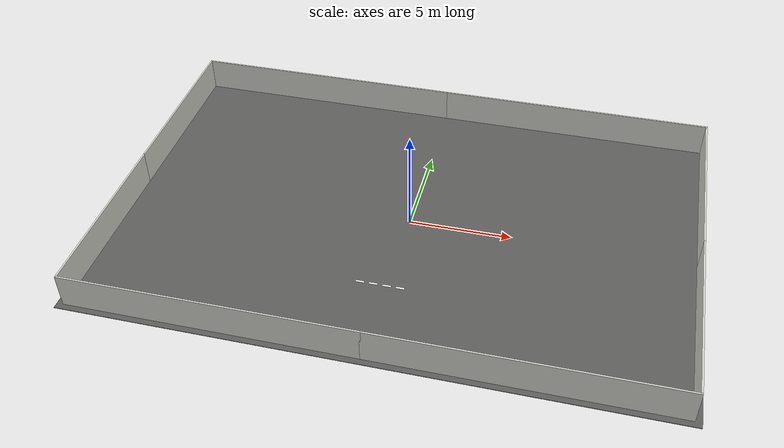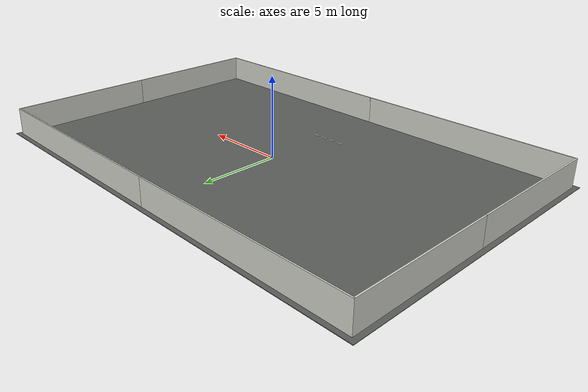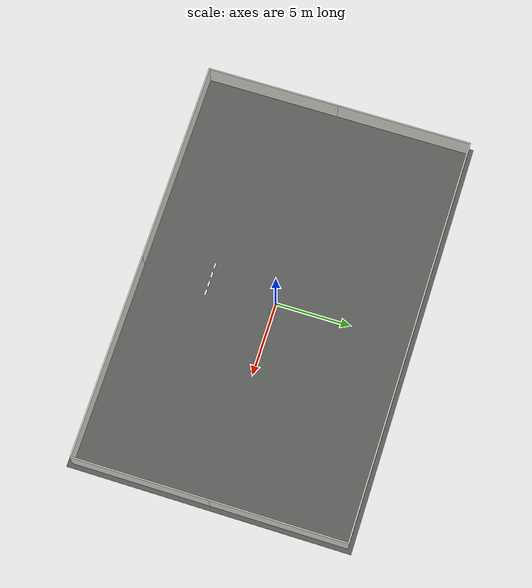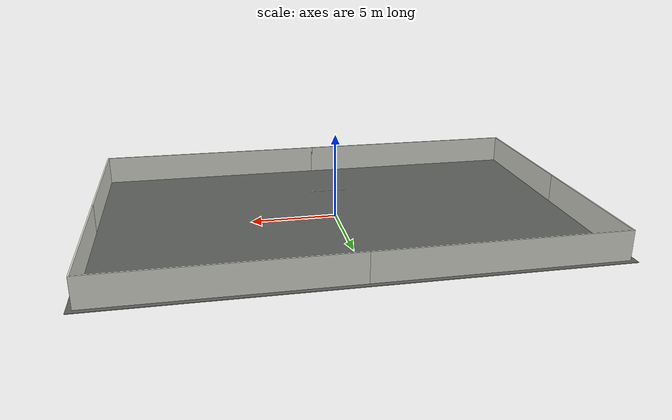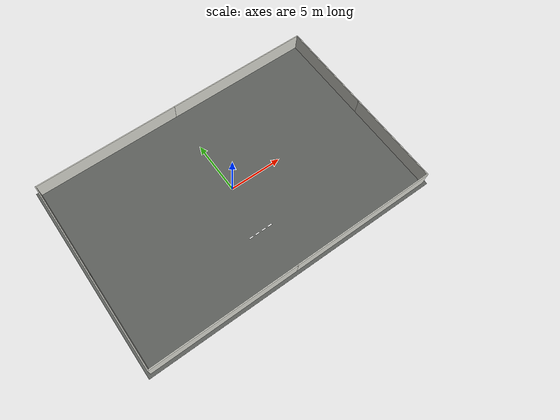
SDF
<sdf version="1.7">
 <world name="kookmin_xycar_track_cad_v4">
  <model name="kookmin_track">
   <static>true</static>
   <link name="floor_base">
    <pose>0 0 -0.015 0 0 0</pose>
    <collision name="collision">
     <geometry><box><size>28.3000 18.6000 0.0300</size></box></geometry>
     <surface>
      <friction>
       <ode><mu>50</mu><mu2>50</mu2></ode>
       <bullet><friction>1</friction><rolling_friction>0.1</rolling_friction></bullet>
      </friction>
     </surface>
    </collision>
    <visual name="visual">
     <geometry><box><size>28.3000 18.6000 0.0300</size></box></geometry>
     <material><ambient>0.3608 0.3686 0.3569 1</ambient><diffuse>0.3608 0.3686 0.3569 1</diffuse></material>
    </visual>
   </link>
   <link name="track_texture_surface">
    <pose>0 0 0.006 0 0 0</pose>
    <visual name="visual">
     <geometry><plane><normal>0 0 1</normal><size>28.3000 18.6000</size></plane></geometry>
     <material>
      <ambient>1 1 1 1</ambient>
      <diffuse>1 1 1 1</diffuse>
      <pbr>
       <metal>
        <albedo_map>file://media/materials/textures/kookmin_cad_v4_road.png</albedo_map>
        <roughness>1</roughness>
        <metalness>0</metalness>
       </metal>
      </pbr>
     </material>
    </visual>
   </link>
  </model>
  <model name="cad_outer_wall">
   <static>true</static>
   <link name="cad_outer_wall_000">
    <pose>-13.8145 -4.4879 0.8500 0.000000 0.000000 -1.570796</pose>
    <collision name="collision">
     <geometry><box><size>9.0559 0.0800 1.7000</size></box></geometry>
     <surface>
      <friction>
       <ode><mu>50</mu><mu2>50</mu2></ode>
       <bullet><friction>1</friction><rolling_friction>0.1</rolling_friction></bullet>
      </friction>
     </surface>
    </collision>
    <visual name="visual">
     <geometry><box><size>9.0559 0.0800 1.7000</size></box></geometry>
     <material><ambient>0.8549 0.8549 0.8235 1</ambient><diffuse>0.8549 0.8549 0.8235 1</diffuse></material>
    </visual>
   </link>
   <link name="cad_outer_wall_001">
    <pose>-6.9072 -8.9759 0.8500 0.000000 0.000000 0.000000</pose>
    <collision name="collision">
     <geometry><box><size>13.8945 0.0800 1.7000</size></box></geometry>
     <surface>
      <friction>
       <ode><mu>50</mu><mu2>50</mu2></ode>
       <bullet><friction>1</friction><rolling_friction>0.1</rolling_friction></bullet>
      </friction>
     </surface>
    </collision>
    <visual name="visual">
     <geometry><box><size>13.8945 0.0800 1.7000</size></box></geometry>
     <material><ambient>0.8549 0.8549 0.8235 1</ambient><diffuse>0.8549 0.8549 0.8235 1</diffuse></material>
    </visual>
   </link>
   <link name="cad_outer_wall_002">
    <pose>6.9072 -8.9759 0.8500 0.000000 0.000000 0.000000</pose>
    <collision name="collision">
     <geometry><box><size>13.8945 0.0800 1.7000</size></box></geometry>
     <surface>
      <friction>
       <ode><mu>50</mu><mu2>50</mu2></ode>
       <bullet><friction>1</friction><rolling_friction>0.1</rolling_friction></bullet>
      </friction>
     </surface>
    </collision>
    <visual name="visual">
     <geometry><box><size>13.8945 0.0800 1.7000</size></box></geometry>
     <material><ambient>0.8549 0.8549 0.8235 1</ambient><diffuse>0.8549 0.8549 0.8235 1</diffuse></material>
    </visual>
   </link>
   <link name="cad_outer_wall_003">
    <pose>13.8145 -4.4879 0.8500 0.000000 0.000000 1.570796</pose>
    <collision name="collision">
     <geometry><box><size>9.0559 0.0800 1.7000</size></box></geometry>
     <surface>
      <friction>
       <ode><mu>50</mu><mu2>50</mu2></ode>
       <bullet><friction>1</friction><rolling_friction>0.1</rolling_friction></bullet>
      </friction>
     </surface>
    </collision>
    <visual name="visual">
     <geometry><box><size>9.0559 0.0800 1.7000</size></box></geometry>
     <material><ambient>0.8549 0.8549 0.8235 1</ambient><diffuse>0.8549 0.8549 0.8235 1</diffuse></material>
    </visual>
   </link>
   <link name="cad_outer_wall_004">
    <pose>13.8145 4.4879 0.8500 0.000000 0.000000 1.570796</pose>
    <collision name="collision">
     <geometry><box><size>9.0559 0.0800 1.7000</size></box></geometry>
     <surface>
      <friction>
       <ode><mu>50</mu><mu2>50</mu2></ode>
       <bullet><friction>1</friction><rolling_friction>0.1</rolling_friction></bullet>
      </friction>
     </surface>
    </collision>
    <visual name="visual">
     <geometry><box><size>9.0559 0.0800 1.7000</size></box></geometry>
     <material><ambient>0.8549 0.8549 0.8235 1</ambient><diffuse>0.8549 0.8549 0.8235 1</diffuse></material>
    </visual>
   </link>
   <link name="cad_outer_wall_005">
    <pose>6.9072 8.9759 0.8500 0.000000 0.000000 3.141593</pose>
    <collision name="collision">
     <geometry><box><size>13.8945 0.0800 1.7000</size></box></geometry>
     <surface>
      <friction>
       <ode><mu>50</mu><mu2>50</mu2></ode>
       <bullet><friction>1</friction><rolling_friction>0.1</rolling_friction></bullet>
      </friction>
     </surface>
    </collision>
    <visual name="visual">
     <geometry><box><size>13.8945 0.0800 1.7000</size></box></geometry>
     <material><ambient>0.8549 0.8549 0.8235 1</ambient><diffuse>0.8549 0.8549 0.8235 1</diffuse></material>
    </visual>
   </link>
   <link name="cad_outer_wall_006">
    <pose>-6.9072 8.9759 0.8500 0.000000 0.000000 3.141593</pose>
    <collision name="collision">
     <geometry><box><size>13.8945 0.0800 1.7000</size></box></geometry>
     <surface>
      <friction>
       <ode><mu>50</mu><mu2>50</mu2></ode>
       <bullet><friction>1</friction><rolling_friction>0.1</rolling_friction></bullet>
      </friction>
     </surface>
    </collision>
    <visual name="visual">
     <geometry><box><size>13.8945 0.0800 1.7000</size></box></geometry>
     <material><ambient>0.8549 0.8549 0.8235 1</ambient><diffuse>0.8549 0.8549 0.8235 1</diffuse></material>
    </visual>
   </link>
   <link name="cad_outer_wall_007">
    <pose>-13.8145 4.4879 0.8500 0.000000 0.000000 -1.570796</pose>
    <collision name="collision">
     <geometry><box><size>9.0559 0.0800 1.7000</size></box></geometry>
     <surface>
      <friction>
       <ode><mu>50</mu><mu2>50</mu2></ode>
       <bullet><friction>1</friction><rolling_friction>0.1</rolling_friction></bullet>
      </friction>
     </surface>
    </collision>
    <visual name="visual">
     <geometry><box><size>9.0559 0.0800 1.7000</size></box></geometry>
     <material><ambient>0.8549 0.8549 0.8235 1</ambient><diffuse>0.8549 0.8549 0.8235 1</diffuse></material>
    </visual>
   </link>
  </model>
  <model name="yellow_centerline_dash_054">
   <static>true</static>
   <pose>-1.2750 -4.5600 0.0206 0 0 0</pose>
   <link name="yellow_centerline_dash_054_surface">
    <visual name="visual">
     <cast_shadows>false</cast_shadows>
     <geometry><plane><normal>0 0 1</normal><size>0.4100 0.1000</size></plane></geometry>
     <material>
      <ambient>1 1 1 1</ambient>
      <diffuse>1 1 1 1</diffuse>
      <emissive>1.0000 0.7686 0.0471 1</emissive>
      <pbr>
       <metal>
        <albedo_map>file://media/materials/textures/kookmin_yellow_centerline_dash_054.png</albedo_map>
        <roughness>1</roughness>
        <metalness>0</metalness>
       </metal>
      </pbr>
     </material>
    </visual>
   </link>
  </model>
  <model name="yellow_centerline_dash_055">
   <static>true</static>
   <pose>-0.6400 -4.5600 0.0207 0 0 0</pose>
   <link name="yellow_centerline_dash_055_surface">
    <visual name="visual">
     <cast_shadows>false</cast_shadows>
     <geometry><plane><normal>0 0 1</normal><size>0.4000 0.1000</size></plane></geometry>
     <material>
      <ambient>1 1 1 1</ambient>
      <diffuse>1 1 1 1</diffuse>
      <emissive>1.0000 0.7686 0.0471 1</emissive>
      <pbr>
       <metal>
        <albedo_map>file://media/materials/textures/kookmin_yellow_centerline_dash_055.png</albedo_map>
        <roughness>1</roughness>
        <metalness>0</metalness>
       </metal>
      </pbr>
     </material>
    </visual>
   </link>
  </model>
  <model name="yellow_centerline_dash_056">
   <static>true</static>
   <pose>0.0000 -4.5600 0.0207 0 0 0</pose>
   <link name="yellow_centerline_dash_056_surface">
    <visual name="visual">
     <cast_shadows>false</cast_shadows>
     <geometry><plane><normal>0 0 1</normal><size>0.4000 0.1000</size></plane></geometry>
     <material>
      <ambient>1 1 1 1</ambient>
      <diffuse>1 1 1 1</diffuse>
      <emissive>1.0000 0.7686 0.0471 1</emissive>
      <pbr>
       <metal>
        <albedo_map>file://media/materials/textures/kookmin_yellow_centerline_dash_056.png</albedo_map>
        <roughness>1</roughness>
        <metalness>0</metalness>
       </metal>
      </pbr>
     </material>
    </visual>
   </link>
  </model>
  <model name="yellow_centerline_dash_057">
   <static>true</static>
   <pose>0.6300 -4.5600 0.0208 0 0 0</pose>
   <link name="yellow_centerline_dash_057_surface">
    <visual name="visual">
     <cast_shadows>false</cast_shadows>
     <geometry><plane><normal>0 0 1</normal><size>0.4000 0.1000</size></plane></geometry>
     <material>
      <ambient>1 1 1 1</ambient>
      <diffuse>1 1 1 1</diffuse>
      <emissive>1.0000 0.7686 0.0471 1</emissive>
      <pbr>
       <metal>
        <albedo_map>file://media/materials/textures/kookmin_yellow_centerline_dash_057.png</albedo_map>
        <roughness>1</roughness>
        <metalness>0</metalness>
       </metal>
      </pbr>
     </material>
    </visual>
   </link>
  </model>
 </world>
</sdf>
